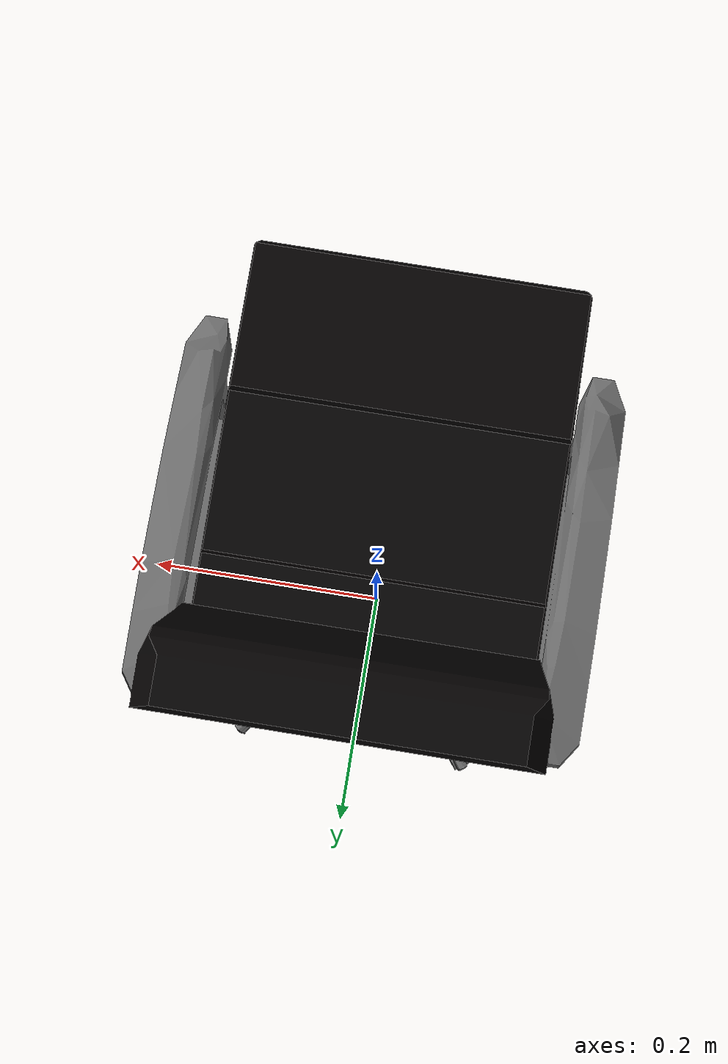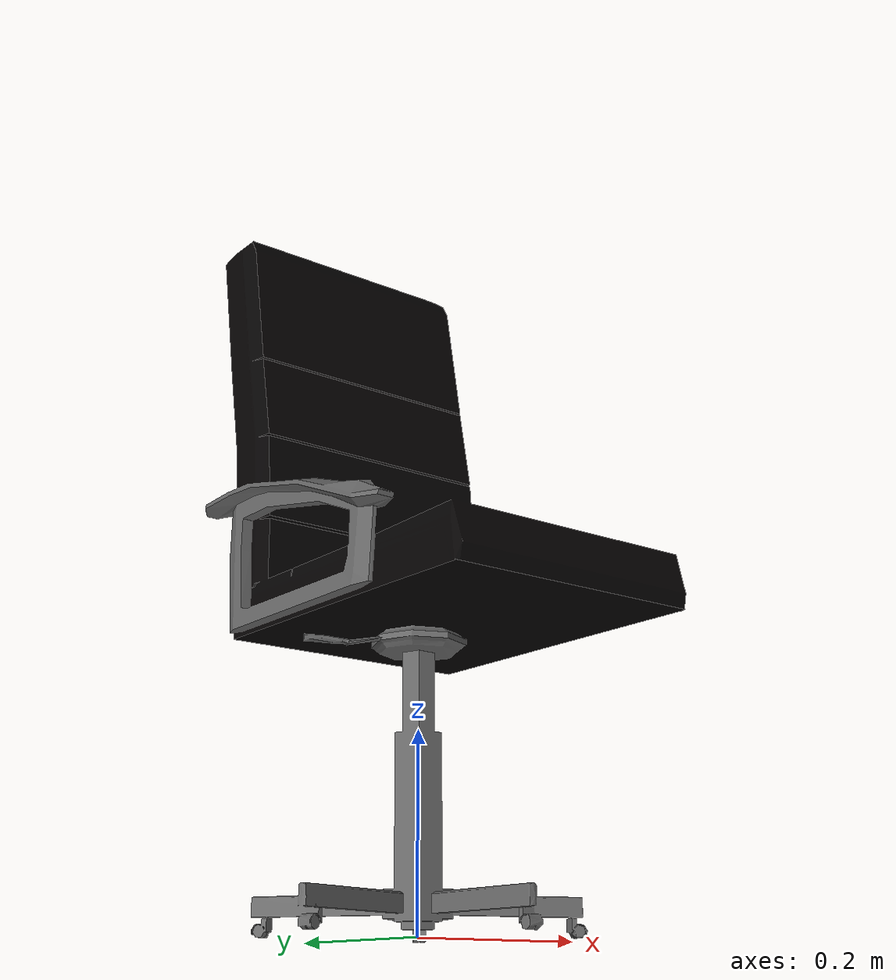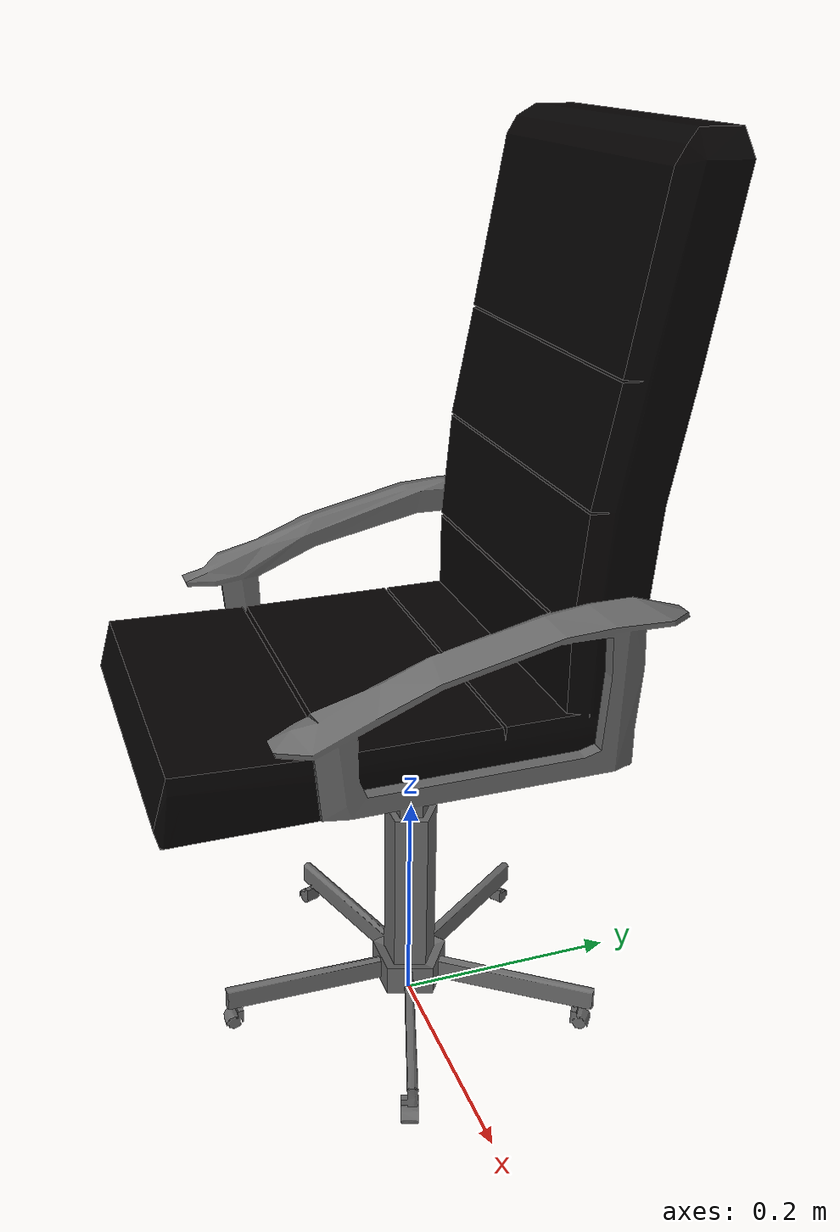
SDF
<?xml version="1.0"?>
<sdf version="1.4">
  <model name="office_chair">
    <static>true</static>
    <link name="link">
      <pose>0 0 0 0 0 0</pose>
      <collision name="collision">
        <geometry>
          <mesh>
             <uri>model://office_chair/office_chair_collision.dae</uri>
	     <scale>0.2 0.2 0.2</scale>
          </mesh>
        </geometry>
      </collision>
      <visual name="visual">
         <geometry>
          <mesh>
            <uri>model://office_chair/office_chair_visual.dae</uri>
		<scale>0.2 0.2 0.2</scale>
          </mesh>
        </geometry>
      </visual>
    </link>
  </model>
</sdf>
